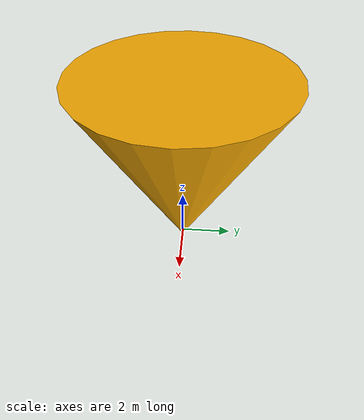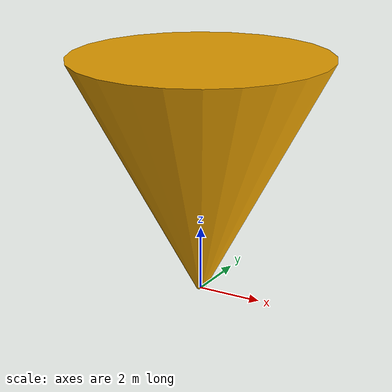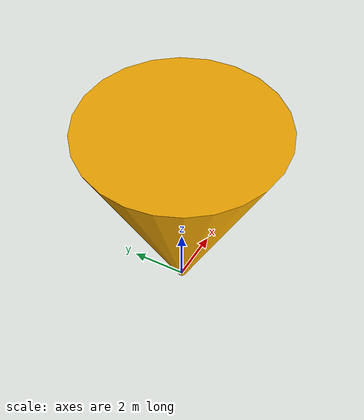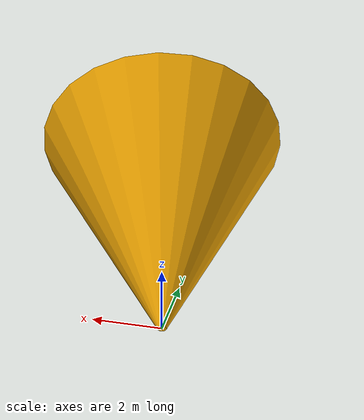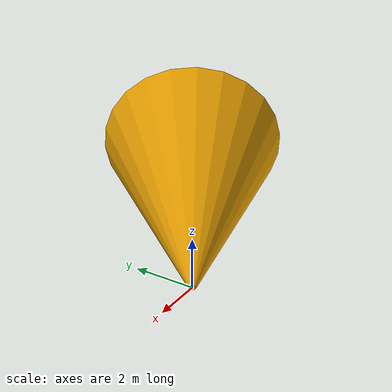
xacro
<?xml version="1.0"?>

<robot name="tree">
  <link name="base_link">
    <inertial>
      <origin xyz="0.0 0.0 0.0" />
      <mass value="1.0" />
      <inertia  ixx="1.0" ixy="0.0"  ixz="0.0"  iyy="1.0"  iyz="0.0"  izz="1.0" />
    </inertial>
    <visual>
      <origin xyz="0.0 0.0 0.0"/>
      <geometry>
        <mesh filename="package://trajectory_reshaping_world_visualizer/res/tree/tree.dae"/>
      </geometry>
    </visual>
    <collision>
      <origin xyz="0.0 0.0 0.0"/>
      <geometry>
		<mesh filename="package://trajectory_reshaping_world_visualizer/res/tree/tree.stl"/>
      </geometry>
    </collision>
  </link>

  <gazebo reference="base_link">
	<turnGravityOff>false</turnGravityOff>
  </gazebo>

</robot>
